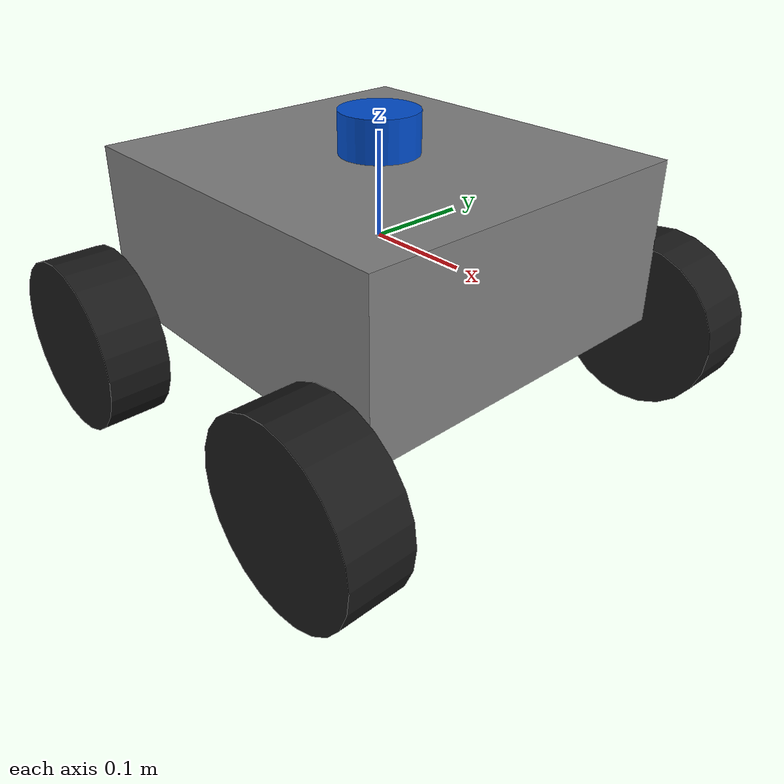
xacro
<?xml version="1.0"?>
<robot xmlns:xacro="http://www.ros.org/wiki/xacro" name="sim_robot">

  <xacro:property name="wheel_radius"  value="0.085"/>
  <xacro:property name="wheel_width"   value="0.06"/>
  <xacro:property name="track_width"   value="0.44"/>   <!-- centros esq-dir -->
  <xacro:property name="wheelbase"     value="0.33"/>   <!-- centros F-R -->

  <!-- Chassi: 0.37 frente-trás × 0.35 esq-dir × 0.16 altura. As rodas ficam
       POR FORA (ponta-a-ponta 0.50×0.50), conectadas por eixo no chassi. -->
  <xacro:property name="body_length"   value="0.37"/>
  <xacro:property name="body_width"    value="0.35"/>
  <xacro:property name="body_height"   value="0.16"/>

  <!-- LiDAR no CENTRO (2026-06-11: o 0.10 antigo era falso), assentado no TOPO
       do chassi (sem mastro): z = body_height/2 + lidar_z = 0.13 + 0.02 = 0.15. -->
  <xacro:property name="lidar_x"       value="0.0"/>
  <xacro:property name="lidar_z"       value="0.02"/>

  <link name="base_link">
    <visual>
      <geometry><box size="${body_length} ${body_width} ${body_height}"/></geometry>
      <material name="grey"><color rgba="0.5 0.5 0.5 1.0"/></material>
    </visual>
    <collision>
      <geometry><box size="${body_length} ${body_width} ${body_height}"/></geometry>
    </collision>
    <inertial>
      <mass value="15.46"/>
      <inertia ixx="0.19" ixy="0" ixz="0" iyy="0.21" iyz="0" izz="0.33"/>
    </inertial>
  </link>

  <!-- Mancal de 3.5cm entre o fundo do chassi e o eixo: a roda fica 0.0175
       (meio mancal) abaixo do fundo do chassi. Bate com o sim_robot.sdf. -->
  <xacro:property name="mancal_h" value="0.035"/>

  <!-- Macro de roda — eixo de giro alinhado a Y (rpy -pi/2 em X), igual ao real -->
  <xacro:macro name="wheel" params="name x y">
    <joint name="${name}_joint" type="continuous">
      <parent link="base_link"/>
      <child link="${name}"/>
      <origin xyz="${x} ${y} ${-(body_height/2 + mancal_h/2)}" rpy="${-pi/2} 0 0"/>
      <axis xyz="0 0 1"/>
    </joint>
    <link name="${name}">
      <visual>
        <geometry><cylinder radius="${wheel_radius}" length="${wheel_width}"/></geometry>
        <material name="black"><color rgba="0.1 0.1 0.1 1.0"/></material>
      </visual>
      <collision>
        <geometry><cylinder radius="${wheel_radius}" length="${wheel_width}"/></geometry>
      </collision>
      <inertial>
        <mass value="1.5"/>
        <inertia ixx="0.005" ixy="0" ixz="0" iyy="0.005" iyz="0" izz="0.009"/>
      </inertial>
    </link>
  </xacro:macro>

  <xacro:wheel name="front_left_wheel"  x="${ wheelbase/2}" y="${ track_width/2}"/>
  <xacro:wheel name="front_right_wheel" x="${ wheelbase/2}" y="${-track_width/2}"/>
  <xacro:wheel name="rear_left_wheel"   x="${-wheelbase/2}" y="${ track_width/2}"/>
  <xacro:wheel name="rear_right_wheel"  x="${-wheelbase/2}" y="${-track_width/2}"/>

  <!-- LiDAR (base_laser) — TF estático consumido por SLAM/Nav2/viz -->
  <joint name="laser_joint" type="fixed">
    <parent link="base_link"/>
    <child link="base_laser"/>
    <origin xyz="${lidar_x} 0 ${body_height/2 + lidar_z}" rpy="0 0 0"/>
  </joint>
  <link name="base_laser">
    <visual>
      <geometry><cylinder radius="0.038" length="0.04"/></geometry>
      <material name="blue"><color rgba="0.0 0.3 0.8 1.0"/></material>
    </visual>
    <collision>
      <geometry><cylinder radius="0.038" length="0.04"/></geometry>
    </collision>
    <inertial>
      <mass value="0.1"/>
      <inertia ixx="0.0001" ixy="0" ixz="0" iyy="0.0001" iyz="0" izz="0.0001"/>
    </inertial>
  </link>

</robot>
